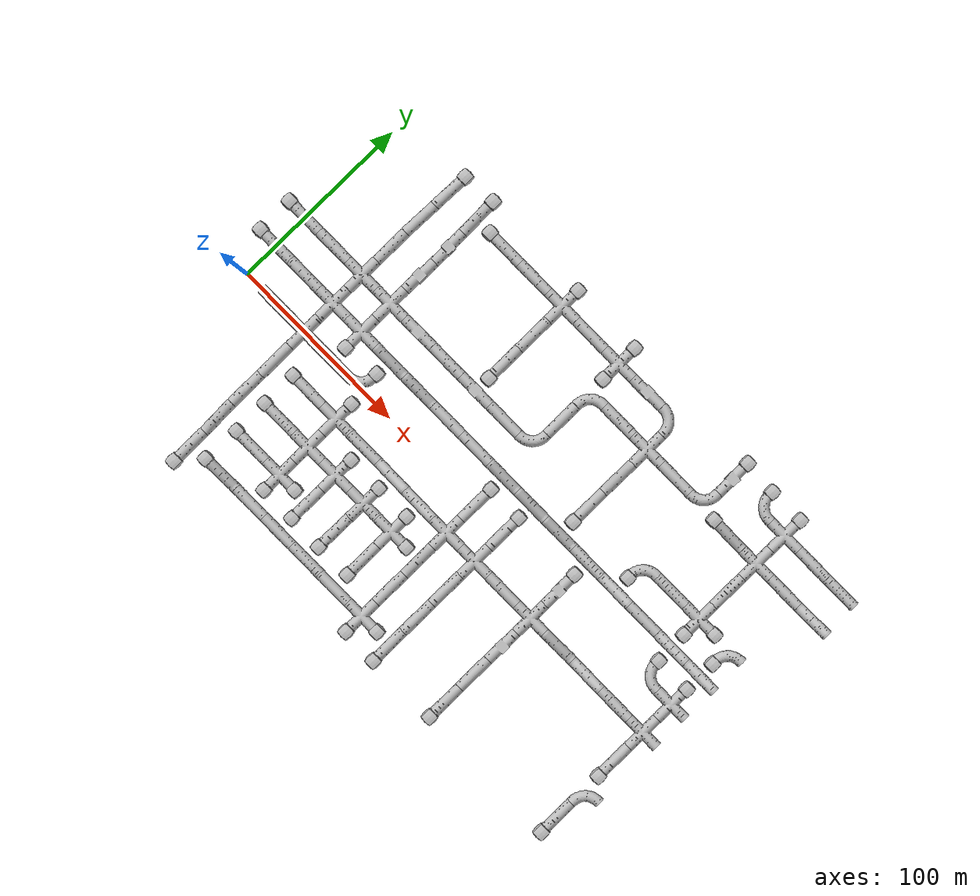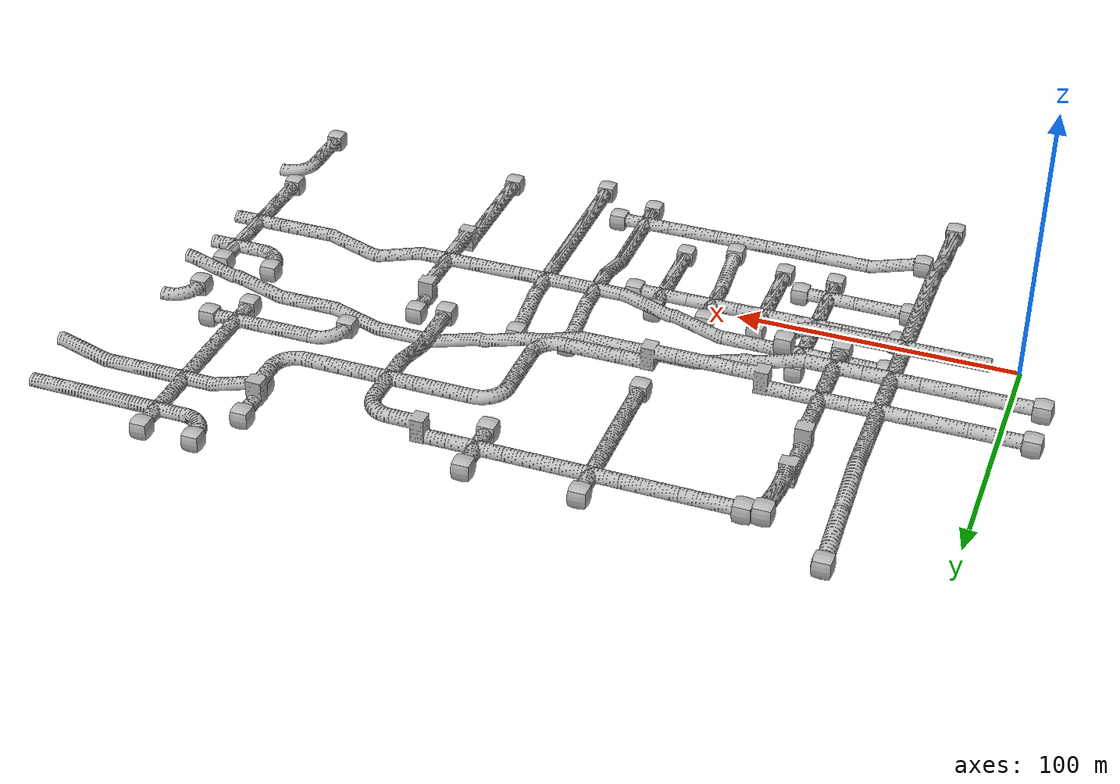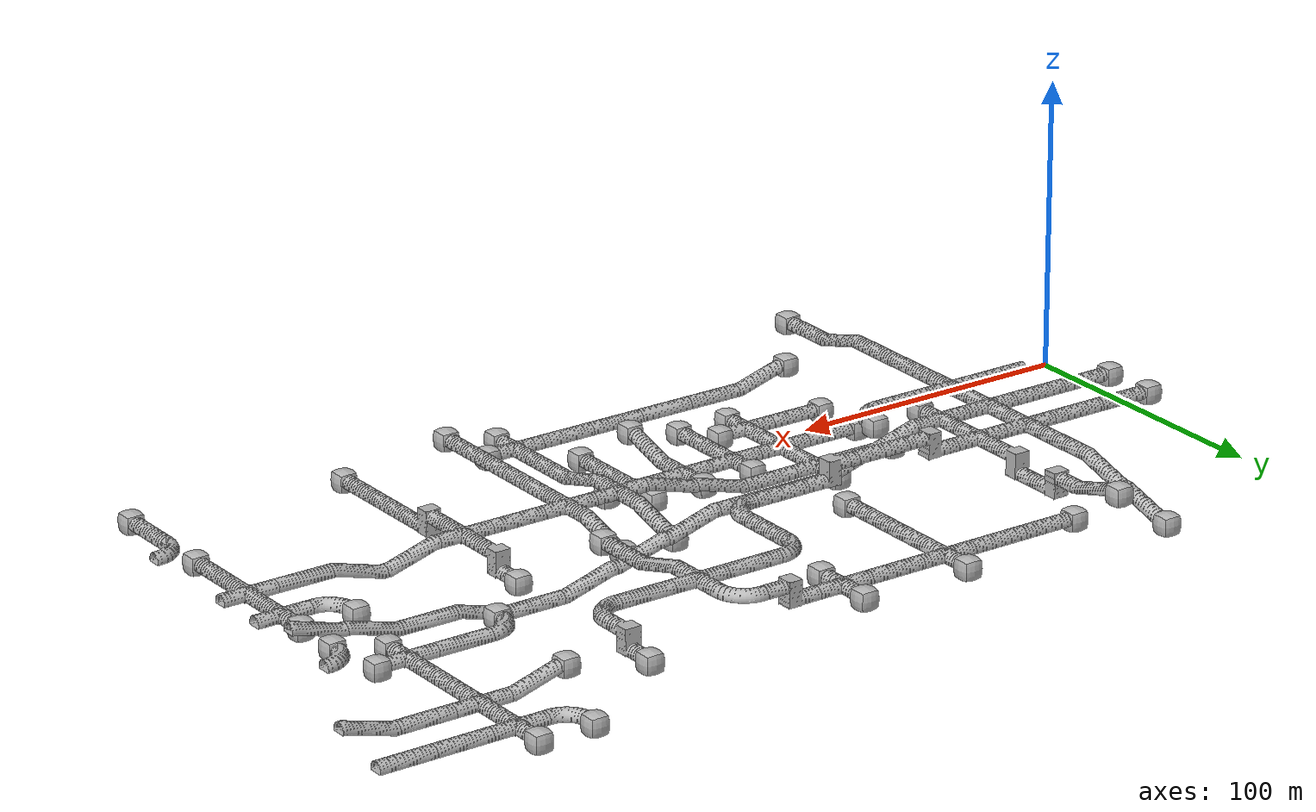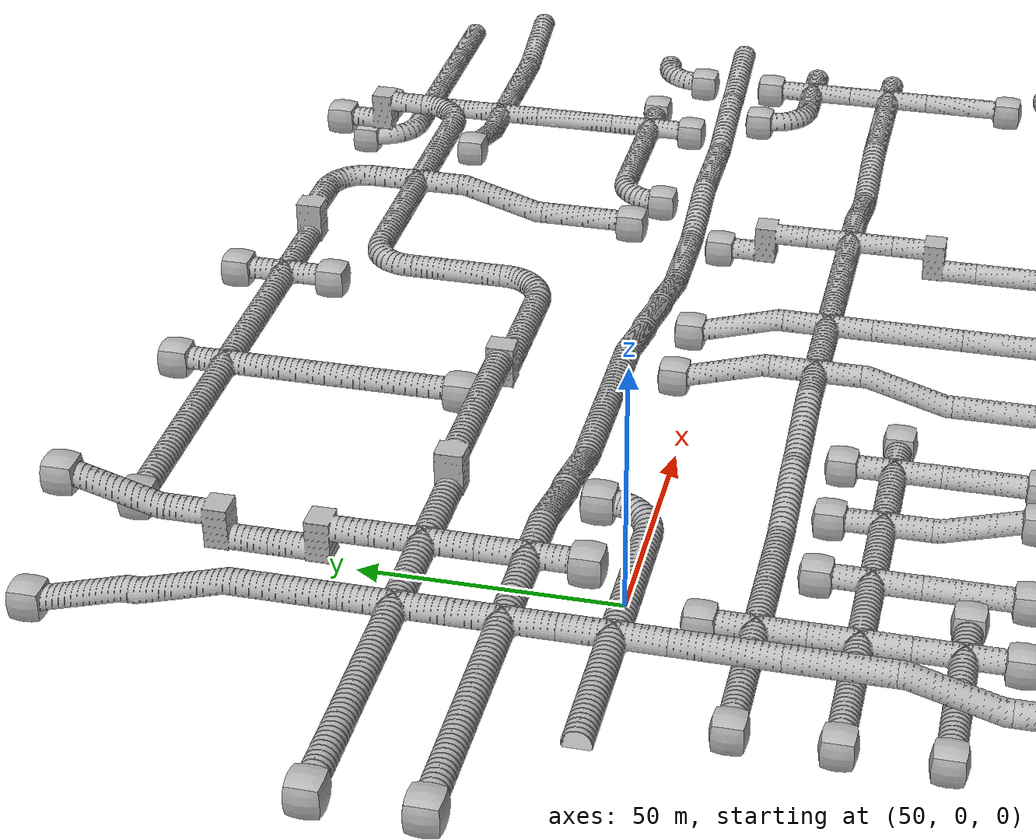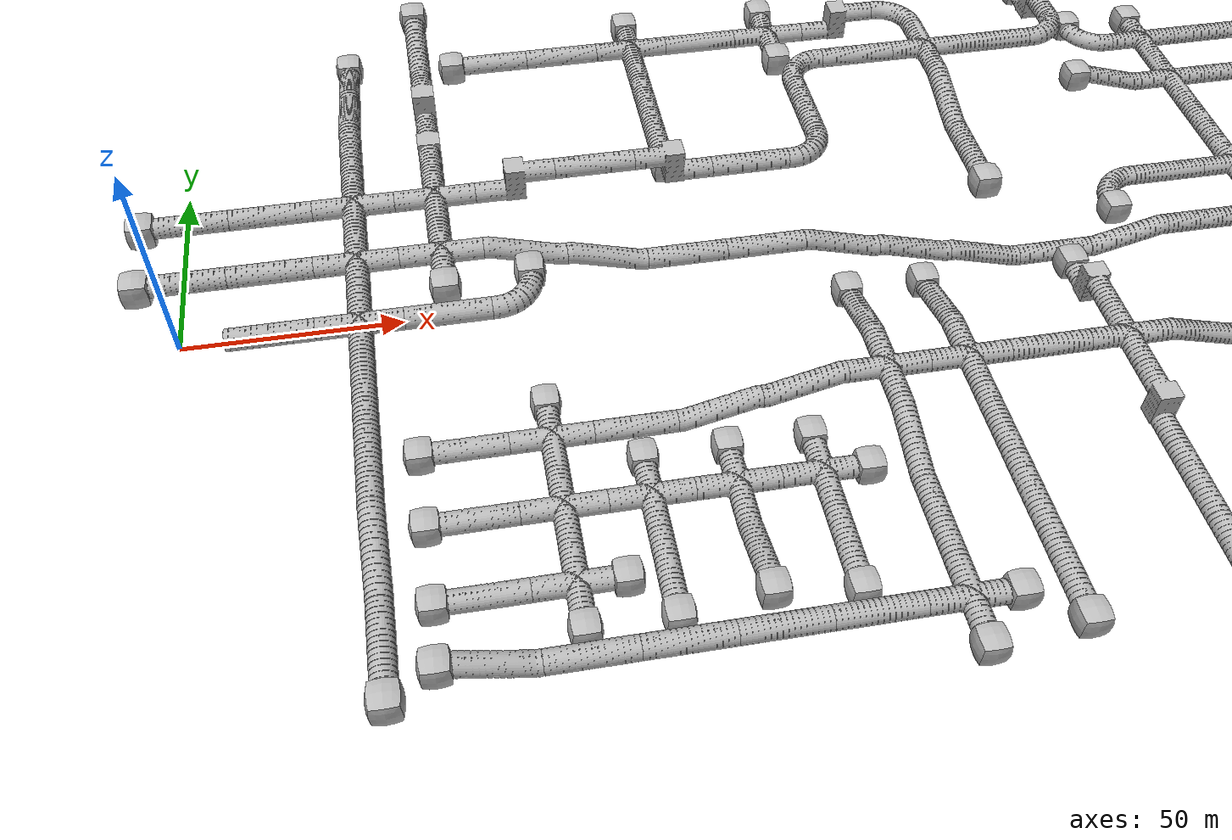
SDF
<sdf version="1.6">
 <world name="tunnel_circuit_05">
  <include><name>artifact_origin</name><pose>2 4 0.5 0 0 0</pose><uri>model://fiducial</uri></include>
  <include>
   <name>tile_1</name>
   <uri>model://tunnel_tile_6</uri>
   <pose>40.000000 100.000000 -10.000000 0 0 3.141593</pose>
  </include>
  <include>
   <name>tile_2</name>
   <uri>model://tunnel_tile_blocker</uri>
   <pose>40.000000 111.000000 -10.000000 0 0 0.000000</pose>
  </include>
  <include>
   <name>tile_3</name>
   <uri>model://tunnel_tile_6</uri>
   <pose>60.000000 100.000000 0.000000 0 0 0.000000</pose>
  </include>
  <include>
   <name>tile_4</name>
   <uri>model://tunnel_tile_blocker</uri>
   <pose>60.000000 111.000000 5.000000 0 0 0.000000</pose>
  </include>
  <include>
   <name>backpack_1</name>
   <uri>model://Backpack</uri>
   <pose>62.000000 107.000000 4.520000 0.314159 0 0.000000</pose>
  </include>
  <include>
   <name>tile_5</name>
   <uri>model://tunnel_tile_5</uri>
   <pose>80.000000 100.000000 -5.000000 0 0 4.712389</pose>
  </include>
  <include>
   <name>tile_6</name>
   <uri>model://tunnel_tile_blocker</uri>
   <pose>69.000000 100.000000 -5.000000 0 0 0.000000</pose>
  </include>
  <include>
   <name>tile_7</name>
   <uri>model://tunnel_tile_5</uri>
   <pose>100.000000 100.000000 -5.000000 0 0 4.712389</pose>
  </include>
  <include>
   <name>backpack_2</name>
   <uri>model://Backpack</uri>
   <pose>89.800000 101.900000 -5.000000 0 0 -1.570796</pose>
  </include>
  <include>
   <name>tile_8</name>
   <uri>model://tunnel_tile_1</uri>
   <pose>120.000000 100.000000 -5.000000 0 0 0.000000</pose>
  </include>
  <include>
   <name>tile_9</name>
   <uri>model://tunnel_tile_blocker</uri>
   <pose>120.000000 111.000000 -5.000000 0 0 0.000000</pose>
  </include>
  <include>
   <name>tile_10</name>
   <uri>model://tunnel_tile_5</uri>
   <pose>140.000000 100.000000 -5.000000 0 0 4.712389</pose>
  </include>
  <include>
   <name>tile_11</name>
   <uri>model://tunnel_tile_1</uri>
   <pose>160.000000 100.000000 -5.000000 0 0 0.000000</pose>
  </include>
  <include>
   <name>tile_12</name>
   <uri>model://tunnel_tile_blocker</uri>
   <pose>160.000000 89.000000 -5.000000 0 0 0.000000</pose>
  </include>
  <include>
   <name>tile_13</name>
   <uri>model://tunnel_tile_blocker</uri>
   <pose>160.000000 111.000000 -5.000000 0 0 0.000000</pose>
  </include>
  <include>
   <name>tile_14</name>
   <uri>model://tunnel_tile_7</uri>
   <pose>180.000000 100.000000 -5.000000 0 0 4.712389</pose>
  </include>
  <include>
   <name>tile_15</name>
   <uri>model://tunnel_tile_2</uri>
   <pose>200.000000 100.000000 0.000000 0 0 4.712389</pose>
  </include>
  <include>
   <name>tile_16</name>
   <uri>model://tunnel_tile_7</uri>
   <pose>240.000000 100.000000 -5.000000 0 0 3.141593</pose>
  </include>
  <include>
   <name>tile_17</name>
   <uri>model://tunnel_tile_blocker</uri>
   <pose>240.000000 111.000000 -5.000000 0 0 0.000000</pose>
  </include>
  <include>
   <name>tile_18</name>
   <uri>model://tunnel_tile_2</uri>
   <pose>260.000000 100.000000 -20.000000 0 0 1.570796</pose>
  </include>
  <include>
   <name>tile_19</name>
   <uri>model://tunnel_tile_blocker</uri>
   <pose>260.000000 111.000000 -20.000000 0 0 0.000000</pose>
  </include>
  <include>
   <name>tile_20</name>
   <uri>model://tunnel_tile_1</uri>
   <pose>280.000000 100.000000 -20.000000 0 0 0.000000</pose>
  </include>
  <include>
   <name>tile_21</name>
   <uri>model://tunnel_tile_blocker</uri>
   <pose>280.000000 111.000000 -20.000000 0 0 0.000000</pose>
  </include>
  <include>
   <name>tile_22</name>
   <uri>model://tunnel_tile_5</uri>
   <pose>300.000000 100.000000 -20.000000 0 0 1.570796</pose>
  </include>
  <include>
   <name>tile_23</name>
   <uri>model://tunnel_tile_5</uri>
   <pose>320.000000 100.000000 -20.000000 0 0 1.570796</pose>
  </include>
  <include>
   <name>tile_35</name>
   <uri>model://tunnel_tile_6</uri>
   <pose>40.000000 80.000000 -5.000000 0 0 3.141593</pose>
  </include>
  <include>
   <name>tile_36</name>
   <uri>model://tunnel_tile_7</uri>
   <pose>60.000000 80.000000 -5.000000 0 0 0.000000</pose>
  </include>
  <include>
   <name>tile_37</name>
   <uri>model://tunnel_tile_5</uri>
   <pose>120.000000 80.000000 -5.000000 0 0 0.000000</pose>
  </include>
  <include>
   <name>tile_38</name>
   <uri>model://tunnel_tile_2</uri>
   <pose>160.000000 80.000000 0.000000 0 0 0.000000</pose>
  </include>
  <include>
   <name>tile_39</name>
   <uri>model://tunnel_tile_5</uri>
   <pose>180.000000 80.000000 0.000000 0 0 1.570796</pose>
  </include>
  <include>
   <name>tile_40</name>
   <uri>model://tunnel_tile_1</uri>
   <pose>200.000000 80.000000 0.000000 0 0 0.000000</pose>
  </include>
  <include>
   <name>tile_41</name>
   <uri>model://tunnel_tile_5</uri>
   <pose>220.000000 80.000000 0.000000 0 0 1.570796</pose>
  </include>
  <include>
   <name>tile_42</name>
   <uri>model://tunnel_tile_2</uri>
   <pose>240.000000 80.000000 0.000000 0 0 3.141593</pose>
  </include>
  <include>
   <name>tile_43</name>
   <uri>model://tunnel_tile_6</uri>
   <pose>260.000000 80.000000 -20.000000 0 0 1.570796</pose>
  </include>
  <include>
   <name>tile_44</name>
   <uri>model://tunnel_tile_blocker</uri>
   <pose>249.000000 80.000000 -15.000000 0 0 0.000000</pose>
  </include>
  <include>
   <name>tile_45</name>
   <uri>model://tunnel_tile_1</uri>
   <pose>280.000000 80.000000 -20.000000 0 0 0.000000</pose>
  </include>
  <include>
   <name>tile_46</name>
   <uri>model://tunnel_tile_5</uri>
   <pose>300.000000 80.000000 -20.000000 0 0 4.712389</pose>
  </include>
  <include>
   <name>tile_47</name>
   <uri>model://tunnel_tile_6</uri>
   <pose>320.000000 80.000000 -20.000000 0 0 4.712389</pose>
  </include>
  <include>
   <name>tile_67</name>
   <uri>model://tunnel_tile_5</uri>
   <pose>40.000000 60.000000 0.000000 0 0 3.141593</pose>
  </include>
  <include>
   <name>tile_68</name>
   <uri>model://tunnel_tile_7</uri>
   <pose>60.000000 60.000000 -5.000000 0 0 3.141593</pose>
  </include>
  <include>
   <name>tile_69</name>
   <uri>model://tunnel_tile_5</uri>
   <pose>120.000000 60.000000 -5.000000 0 0 0.000000</pose>
  </include>
  <include>
   <name>tile_70</name>
   <uri>model://tunnel_tile_blocker</uri>
   <pose>120.000000 49.000000 -5.000000 0 0 0.000000</pose>
  </include>
  <include>
   <name>tile_71</name>
   <uri>model://tunnel_tile_5</uri>
   <pose>160.000000 60.000000 0.000000 0 0 3.141593</pose>
  </include>
  <include>
   <name>tile_72</name>
   <uri>model://tunnel_tile_6</uri>
   <pose>200.000000 60.000000 -5.000000 0 0 0.000000</pose>
  </include>
  <include>
   <name>tile_73</name>
   <uri>model://tunnel_tile_5</uri>
   <pose>280.000000 60.000000 -20.000000 0 0 0.000000</pose>
  </include>
  <include>
   <name>tile_94</name>
   <uri>model://tunnel_tile_5</uri>
   <pose>0.000000 40.000000 0.000000 0 0 4.712389</pose>
  </include>
  <include>
   <name>tile_95</name>
   <uri>model://tunnel_tile_blocker</uri>
   <pose>-11.000000 40.000000 0.000000 0 0 0.000000</pose>
  </include>
  <include>
   <name>tile_96</name>
   <uri>model://tunnel_tile_5</uri>
   <pose>20.000000 40.000000 0.000000 0 0 4.712389</pose>
  </include>
  <include>
   <name>tile_97</name>
   <uri>model://tunnel_tile_1</uri>
   <pose>40.000000 40.000000 0.000000 0 0 0.000000</pose>
  </include>
  <include>
   <name>tile_98</name>
   <uri>model://tunnel_tile_1</uri>
   <pose>60.000000 40.000000 0.000000 0 0 0.000000</pose>
  </include>
  <include>
   <name>tile_99</name>
   <uri>model://tunnel_tile_7</uri>
   <pose>80.000000 40.000000 0.000000 0 0 4.712389</pose>
  </include>
  <include>
   <name>tile_100</name>
   <uri>model://tunnel_tile_5</uri>
   <pose>100.000000 40.000000 5.000000 0 0 1.570796</pose>
  </include>
  <include>
   <name>tile_101</name>
   <uri>model://tunnel_tile_7</uri>
   <pose>120.000000 40.000000 0.000000 0 0 1.570796</pose>
  </include>
  <include>
   <name>tile_102</name>
   <uri>model://tunnel_tile_5</uri>
   <pose>140.000000 40.000000 0.000000 0 0 1.570796</pose>
  </include>
  <include>
   <name>tile_103</name>
   <uri>model://tunnel_tile_2</uri>
   <pose>160.000000 40.000000 0.000000 0 0 3.141593</pose>
  </include>
  <include>
   <name>tile_104</name>
   <uri>model://tunnel_tile_5</uri>
   <pose>200.000000 40.000000 -5.000000 0 0 0.000000</pose>
  </include>
  <include>
   <name>tile_105</name>
   <uri>model://tunnel_tile_blocker</uri>
   <pose>200.000000 29.000000 -5.000000 0 0 0.000000</pose>
  </include>
  <include>
   <name>tile_106</name>
   <uri>model://tunnel_tile_2</uri>
   <pose>240.000000 40.000000 -20.000000 0 0 0.000000</pose>
  </include>
  <include>
   <name>tile_107</name>
   <uri>model://tunnel_tile_blocker</uri>
   <pose>240.000000 29.000000 -20.000000 0 0 0.000000</pose>
  </include>
  <include>
   <name>tile_108</name>
   <uri>model://tunnel_tile_5</uri>
   <pose>260.000000 40.000000 -20.000000 0 0 4.712389</pose>
  </include>
  <include>
   <name>tile_109</name>
   <uri>model://tunnel_tile_1</uri>
   <pose>280.000000 40.000000 -20.000000 0 0 0.000000</pose>
  </include>
  <include>
   <name>tile_110</name>
   <uri>model://tunnel_tile_blocker</uri>
   <pose>291.000000 40.000000 -20.000000 0 0 0.000000</pose>
  </include>
  <include>
   <name>tile_111</name>
   <uri>model://tunnel_tile_blocker</uri>
   <pose>280.000000 29.000000 -20.000000 0 0 0.000000</pose>
  </include>
  <include>
   <name>tile_112</name>
   <uri>model://tunnel_tile_2</uri>
   <pose>300.000000 40.000000 -15.000000 0 0 0.000000</pose>
  </include>
  <include>
   <name>tile_113</name>
   <uri>model://tunnel_tile_blocker</uri>
   <pose>300.000000 29.000000 -15.000000 0 0 0.000000</pose>
  </include>
  <include>
   <name>extinguisher_2</name>
   <uri>model://Extinguisher</uri>
   <pose>302.000000 34.500000 -15.000000 0 0 0.000000</pose>
  </include>
  <include>
   <name>tile_136</name>
   <uri>model://tunnel_tile_5</uri>
   <pose>0.000000 20.000000 0.000000 0 0 4.712389</pose>
  </include>
  <include>
   <name>tile_137</name>
   <uri>model://tunnel_tile_blocker</uri>
   <pose>-11.000000 20.000000 0.000000 0 0 0.000000</pose>
  </include>
  <include>
   <name>tile_138</name>
   <uri>model://tunnel_tile_5</uri>
   <pose>20.000000 20.000000 0.000000 0 0 4.712389</pose>
  </include>
  <include>
   <name>tile_139</name>
   <uri>model://tunnel_tile_1</uri>
   <pose>40.000000 20.000000 0.000000 0 0 0.000000</pose>
  </include>
  <include>
   <name>tile_140</name>
   <uri>model://tunnel_tile_1</uri>
   <pose>60.000000 20.000000 0.000000 0 0 0.000000</pose>
  </include>
  <include>
   <name>tile_141</name>
   <uri>model://tunnel_tile_blocker</uri>
   <pose>60.000000 9.000000 0.000000 0 0 0.000000</pose>
  </include>
  <include>
   <name>tile_142</name>
   <uri>model://tunnel_tile_6</uri>
   <pose>80.000000 20.000000 -5.000000 0 0 1.570796</pose>
  </include>
  <include>
   <name>tile_143</name>
   <uri>model://tunnel_tile_6</uri>
   <pose>100.000000 20.000000 -10.000000 0 0 1.570796</pose>
  </include>
  <include>
   <name>tile_144</name>
   <uri>model://tunnel_tile_5</uri>
   <pose>120.000000 20.000000 -10.000000 0 0 1.570796</pose>
  </include>
  <include>
   <name>tile_145</name>
   <uri>model://tunnel_tile_5</uri>
   <pose>140.000000 20.000000 -10.000000 0 0 1.570796</pose>
  </include>
  <include>
   <name>tile_146</name>
   <uri>model://tunnel_tile_6</uri>
   <pose>160.000000 20.000000 -15.000000 0 0 1.570796</pose>
  </include>
  <include>
   <name>tile_147</name>
   <uri>model://tunnel_tile_6</uri>
   <pose>180.000000 20.000000 -20.000000 0 0 1.570796</pose>
  </include>
  <include>
   <name>tile_148</name>
   <uri>model://tunnel_tile_6</uri>
   <pose>200.000000 20.000000 -25.000000 0 0 1.570796</pose>
  </include>
  <include>
   <name>tile_149</name>
   <uri>model://tunnel_tile_5</uri>
   <pose>220.000000 20.000000 -25.000000 0 0 1.570796</pose>
  </include>
  <include>
   <name>tile_150</name>
   <uri>model://tunnel_tile_6</uri>
   <pose>240.000000 20.000000 -25.000000 0 0 4.712389</pose>
  </include>
  <include>
   <name>tile_151</name>
   <uri>model://tunnel_tile_5</uri>
   <pose>260.000000 20.000000 -20.000000 0 0 1.570796</pose>
  </include>
  <include>
   <name>tile_152</name>
   <uri>model://tunnel_tile_6</uri>
   <pose>280.000000 20.000000 -20.000000 0 0 4.712389</pose>
  </include>
  <include>
   <name>tile_153</name>
   <uri>model://tunnel_tile_6</uri>
   <pose>300.000000 20.000000 -15.000000 0 0 4.712389</pose>
  </include>
  <include>
   <name>tile_173</name>
   <uri>model://tunnel_tile_5</uri>
   <pose>20.000000 0.000000 0.000000 0 0 1.570796</pose>
  </include>
  <include>
   <name>tile_174</name>
   <uri>model://tunnel_tile_1</uri>
   <pose>40.000000 0.000000 0.000000 0 0 0.000000</pose>
  </include>
  <include>
   <name>tile_175</name>
   <uri>model://tunnel_tile_5</uri>
   <pose>60.000000 0.000000 0.000000 0 0 1.570796</pose>
  </include>
  <include>
   <name>tile_176</name>
   <uri>model://tunnel_tile_2</uri>
   <pose>80.000000 0.000000 0.000000 0 0 3.141593</pose>
  </include>
  <include>
   <name>tile_177</name>
   <uri>model://tunnel_tile_blocker</uri>
   <pose>80.000000 11.000000 0.000000 0 0 0.000000</pose>
  </include>
  <include>
   <name>tile_178</name>
   <uri>model://tunnel_tile_6</uri>
   <pose>160.000000 0.000000 -20.000000 0 0 3.141593</pose>
  </include>
  <include>
   <name>tile_179</name>
   <uri>model://tunnel_tile_blocker</uri>
   <pose>160.000000 11.000000 -20.000000 0 0 0.000000</pose>
  </include>
  <include>
   <name>tile_180</name>
   <uri>model://tunnel_tile_6</uri>
   <pose>180.000000 0.000000 -20.000000 0 0 3.141593</pose>
  </include>
  <include>
   <name>tile_181</name>
   <uri>model://tunnel_tile_blocker</uri>
   <pose>180.000000 11.000000 -20.000000 0 0 0.000000</pose>
  </include>
  <include>
   <name>tile_182</name>
   <uri>model://tunnel_tile_7</uri>
   <pose>220.000000 0.000000 -20.000000 0 0 3.141593</pose>
  </include>
  <include>
   <name>tile_183</name>
   <uri>model://tunnel_tile_blocker</uri>
   <pose>220.000000 11.000000 -20.000000 0 0 0.000000</pose>
  </include>
  <include>
   <name>tile_184</name>
   <uri>model://tunnel_tile_2</uri>
   <pose>280.000000 0.000000 -15.000000 0 0 1.570796</pose>
  </include>
  <include>
   <name>tile_185</name>
   <uri>model://tunnel_tile_blocker</uri>
   <pose>280.000000 11.000000 -15.000000 0 0 0.000000</pose>
  </include>
  <include>
   <name>tile_186</name>
   <uri>model://tunnel_tile_1</uri>
   <pose>300.000000 0.000000 -15.000000 0 0 0.000000</pose>
  </include>
  <include>
   <name>tile_187</name>
   <uri>model://tunnel_tile_blocker</uri>
   <pose>300.000000 11.000000 -15.000000 0 0 0.000000</pose>
  </include>
  <include>
   <name>tile_203</name>
   <uri>model://tunnel_tile_5</uri>
   <pose>40.000000 -20.000000 0.000000 0 0 0.000000</pose>
  </include>
  <include>
   <name>tile_204</name>
   <uri>model://tunnel_tile_5</uri>
   <pose>60.000000 -20.000000 -25.000000 0 0 4.712389</pose>
  </include>
  <include>
   <name>tile_205</name>
   <uri>model://tunnel_tile_blocker</uri>
   <pose>49.000000 -20.000000 -25.000000 0 0 0.000000</pose>
  </include>
  <include>
   <name>tile_206</name>
   <uri>model://tunnel_tile_1</uri>
   <pose>80.000000 -20.000000 -25.000000 0 0 0.000000</pose>
  </include>
  <include>
   <name>tile_207</name>
   <uri>model://tunnel_tile_blocker</uri>
   <pose>80.000000 -9.000000 -25.000000 0 0 0.000000</pose>
  </include>
  <include>
   <name>tile_208</name>
   <uri>model://tunnel_tile_5</uri>
   <pose>100.000000 -20.000000 -25.000000 0 0 4.712389</pose>
  </include>
  <include>
   <name>tile_209</name>
   <uri>model://tunnel_tile_6</uri>
   <pose>120.000000 -20.000000 -25.000000 0 0 4.712389</pose>
  </include>
  <include>
   <name>tile_210</name>
   <uri>model://tunnel_tile_6</uri>
   <pose>140.000000 -20.000000 -20.000000 0 0 4.712389</pose>
  </include>
  <include>
   <name>tile_211</name>
   <uri>model://tunnel_tile_1</uri>
   <pose>160.000000 -20.000000 -15.000000 0 0 0.000000</pose>
  </include>
  <include>
   <name>tile_212</name>
   <uri>model://tunnel_tile_1</uri>
   <pose>180.000000 -20.000000 -15.000000 0 0 0.000000</pose>
  </include>
  <include>
   <name>tile_213</name>
   <uri>model://tunnel_tile_5</uri>
   <pose>200.000000 -20.000000 -15.000000 0 0 4.712389</pose>
  </include>
  <include>
   <name>tile_214</name>
   <uri>model://tunnel_tile_1</uri>
   <pose>220.000000 -20.000000 -15.000000 0 0 0.000000</pose>
  </include>
  <include>
   <name>tile_215</name>
   <uri>model://tunnel_tile_6</uri>
   <pose>240.000000 -20.000000 -20.000000 0 0 1.570796</pose>
  </include>
  <include>
   <name>tile_216</name>
   <uri>model://tunnel_tile_6</uri>
   <pose>260.000000 -20.000000 -20.000000 0 0 4.712389</pose>
  </include>
  <include>
   <name>tile_217</name>
   <uri>model://tunnel_tile_5</uri>
   <pose>280.000000 -20.000000 -15.000000 0 0 4.712389</pose>
  </include>
  <include>
   <name>tile_218</name>
   <uri>model://tunnel_tile_1</uri>
   <pose>300.000000 -20.000000 -15.000000 0 0 0.000000</pose>
  </include>
  <include>
   <name>tile_238</name>
   <uri>model://tunnel_tile_5</uri>
   <pose>40.000000 -40.000000 0.000000 0 0 0.000000</pose>
  </include>
  <include>
   <name>tile_239</name>
   <uri>model://tunnel_tile_5</uri>
   <pose>60.000000 -40.000000 -25.000000 0 0 4.712389</pose>
  </include>
  <include>
   <name>tile_240</name>
   <uri>model://tunnel_tile_blocker</uri>
   <pose>49.000000 -40.000000 -25.000000 0 0 0.000000</pose>
  </include>
  <include>
   <name>tile_241</name>
   <uri>model://tunnel_tile_blocker</uri>
   <pose>49.000000 -40.000000 -25.000000 0 0 0.000000</pose>
  </include>
  <include>
   <name>tile_242</name>
   <uri>model://tunnel_tile_1</uri>
   <pose>80.000000 -40.000000 -25.000000 0 0 0.000000</pose>
  </include>
  <include>
   <name>tile_243</name>
   <uri>model://tunnel_tile_1</uri>
   <pose>100.000000 -40.000000 -25.000000 0 0 0.000000</pose>
  </include>
  <include>
   <name>tile_244</name>
   <uri>model://tunnel_tile_blocker</uri>
   <pose>100.000000 -29.000000 -25.000000 0 0 0.000000</pose>
  </include>
  <include>
   <name>tile_245</name>
   <uri>model://tunnel_tile_1</uri>
   <pose>120.000000 -40.000000 -25.000000 0 0 0.000000</pose>
  </include>
  <include>
   <name>tile_246</name>
   <uri>model://tunnel_tile_blocker</uri>
   <pose>120.000000 -29.000000 -25.000000 0 0 0.000000</pose>
  </include>
  <include>
   <name>tile_247</name>
   <uri>model://tunnel_tile_1</uri>
   <pose>140.000000 -40.000000 -25.000000 0 0 0.000000</pose>
  </include>
  <include>
   <name>tile_248</name>
   <uri>model://tunnel_tile_blocker</uri>
   <pose>140.000000 -29.000000 -25.000000 0 0 0.000000</pose>
  </include>
  <include>
   <name>tile_249</name>
   <uri>model://tunnel_tile_blocker</uri>
   <pose>151.000000 -40.000000 -25.000000 0 0 0.000000</pose>
  </include>
  <include>
   <name>tile_250</name>
   <uri>model://tunnel_tile_6</uri>
   <pose>160.000000 -40.000000 -20.000000 0 0 0.000000</pose>
  </include>
  <include>
   <name>tile_251</name>
   <uri>model://tunnel_tile_5</uri>
   <pose>180.000000 -40.000000 -15.000000 0 0 0.000000</pose>
  </include>
  <include>
   <name>tile_252</name>
   <uri>model://tunnel_tile_7</uri>
   <pose>220.000000 -40.000000 -20.000000 0 0 0.000000</pose>
  </include>
  <include>
   <name>tile_253</name>
   <uri>model://tunnel_tile_5</uri>
   <pose>300.000000 -40.000000 -15.000000 0 0 0.000000</pose>
  </include>
  <include>
   <name>tile_254</name>
   <uri>model://tunnel_tile_blocker</uri>
   <pose>300.000000 -51.000000 -15.000000 0 0 0.000000</pose>
  </include>
  <include>
   <name>tile_267</name>
   <uri>model://tunnel_tile_6</uri>
   <pose>40.000000 -60.000000 -5.000000 0 0 0.000000</pose>
  </include>
  <include>
   <name>tile_268</name>
   <uri>model://tunnel_tile_5</uri>
   <pose>60.000000 -60.000000 -25.000000 0 0 4.712389</pose>
  </include>
  <include>
   <name>tile_269</name>
   <uri>model://tunnel_tile_blocker</uri>
   <pose>49.000000 -60.000000 -25.000000 0 0 0.000000</pose>
  </include>
  <include>
   <name>tile_270</name>
   <uri>model://tunnel_tile_1</uri>
   <pose>80.000000 -60.000000 -25.000000 0 0 0.000000</pose>
  </include>
  <include>
   <name>tile_271</name>
   <uri>model://tunnel_tile_blocker</uri>
   <pose>91.000000 -60.000000 -25.000000 0 0 0.000000</pose>
  </include>
  <include>
   <name>tile_272</name>
   <uri>model://tunnel_tile_blocker</uri>
   <pose>80.000000 -71.000000 -25.000000 0 0 0.000000</pose>
  </include>
  <include>
   <name>tile_273</name>
   <uri>model://tunnel_tile_5</uri>
   <pose>100.000000 -60.000000 -25.000000 0 0 0.000000</pose>
  </include>
  <include>
   <name>tile_274</name>
   <uri>model://tunnel_tile_blocker</uri>
   <pose>100.000000 -71.000000 -25.000000 0 0 0.000000</pose>
  </include>
  <include>
   <name>tile_275</name>
   <uri>model://tunnel_tile_6</uri>
   <pose>120.000000 -60.000000 -25.000000 0 0 3.141593</pose>
  </include>
  <include>
   <name>tile_276</name>
   <uri>model://tunnel_tile_blocker</uri>
   <pose>120.000000 -71.000000 -20.000000 0 0 0.000000</pose>
  </include>
  <include>
   <name>backpack_4</name>
   <uri>model://Backpack</uri>
   <pose>121.200000 -67.000000 -20.480000 0.314159 0 3.141593</pose>
  </include>
  <include>
   <name>tile_277</name>
   <uri>model://tunnel_tile_5</uri>
   <pose>140.000000 -60.000000 -25.000000 0 0 0.000000</pose>
  </include>
  <include>
   <name>tile_278</name>
   <uri>model://tunnel_tile_blocker</uri>
   <pose>140.000000 -71.000000 -25.000000 0 0 0.000000</pose>
  </include>
  <include>
   <name>tile_279</name>
   <uri>model://tunnel_tile_5</uri>
   <pose>160.000000 -60.000000 -20.000000 0 0 0.000000</pose>
  </include>
  <include>
   <name>tile_280</name>
   <uri>model://tunnel_tile_5</uri>
   <pose>180.000000 -60.000000 -15.000000 0 0 0.000000</pose>
  </include>
  <include>
   <name>tile_281</name>
   <uri>model://tunnel_tile_5</uri>
   <pose>220.000000 -60.000000 -20.000000 0 0 0.000000</pose>
  </include>
  <include>
   <name>tile_282</name>
   <uri>model://tunnel_tile_2</uri>
   <pose>300.000000 -60.000000 -15.000000 0 0 0.000000</pose>
  </include>
  <include>
   <name>phone_2</name>
   <uri>model://Phone</uri>
   <pose>297.700000 -67.000000 -14.992000 1.570796 3.141593 0.000000</pose>
  </include>
  <include>
   <name>tile_292</name>
   <uri>model://tunnel_tile_5</uri>
   <pose>40.000000 -80.000000 -5.000000 0 0 0.000000</pose>
  </include>
  <include>
   <name>tile_293</name>
   <uri>model://tunnel_tile_blocker</uri>
   <pose>40.000000 -91.000000 -5.000000 0 0 0.000000</pose>
  </include>
  <include>
   <name>tile_294</name>
   <uri>model://tunnel_tile_6</uri>
   <pose>60.000000 -80.000000 -20.000000 0 0 1.570796</pose>
  </include>
  <include>
   <name>tile_295</name>
   <uri>model://tunnel_tile_blocker</uri>
   <pose>49.000000 -80.000000 -15.000000 0 0 0.000000</pose>
  </include>
  <include>
   <name>tile_296</name>
   <uri>model://tunnel_tile_5</uri>
   <pose>80.000000 -80.000000 -20.000000 0 0 4.712389</pose>
  </include>
  <include>
   <name>tile_297</name>
   <uri>model://tunnel_tile_5</uri>
   <pose>100.000000 -80.000000 -20.000000 0 0 4.712389</pose>
  </include>
  <include>
   <name>tile_298</name>
   <uri>model://tunnel_tile_5</uri>
   <pose>120.000000 -80.000000 -20.000000 0 0 4.712389</pose>
  </include>
  <include>
   <name>tile_299</name>
   <uri>model://tunnel_tile_5</uri>
   <pose>140.000000 -80.000000 -20.000000 0 0 4.712389</pose>
  </include>
  <include>
   <name>tile_300</name>
   <uri>model://tunnel_tile_1</uri>
   <pose>160.000000 -80.000000 -20.000000 0 0 0.000000</pose>
  </include>
  <include>
   <name>tile_301</name>
   <uri>model://tunnel_tile_blocker</uri>
   <pose>171.000000 -80.000000 -20.000000 0 0 0.000000</pose>
  </include>
  <include>
   <name>tile_302</name>
   <uri>model://tunnel_tile_blocker</uri>
   <pose>160.000000 -91.000000 -20.000000 0 0 0.000000</pose>
  </include>
  <include>
   <name>tile_303</name>
   <uri>model://tunnel_tile_5</uri>
   <pose>180.000000 -80.000000 -15.000000 0 0 0.000000</pose>
  </include>
  <include>
   <name>tile_304</name>
   <uri>model://tunnel_tile_blocker</uri>
   <pose>180.000000 -91.000000 -15.000000 0 0 0.000000</pose>
  </include>
  <include>
   <name>tile_305</name>
   <uri>model://tunnel_tile_5</uri>
   <pose>220.000000 -80.000000 -20.000000 0 0 0.000000</pose>
  </include>
  <include>
   <name>tile_306</name>
   <uri>model://tunnel_tile_blocker</uri>
   <pose>220.000000 -91.000000 -20.000000 0 0 0.000000</pose>
  </include>
  <include>
   <name>phone_3</name>
   <uri>model://Phone</uri>
   <pose>218.800000 -87.200000 -19.992000 1.570796 3.141593 0.000000</pose>
  </include>
  <include>
   <name>tile_307</name>
   <uri>model://tunnel_tile_5</uri>
   <pose>300.000000 -80.000000 -15.000000 0 0 0.000000</pose>
  </include>
  <include>
   <name>tile_308</name>
   <uri>model://tunnel_tile_blocker</uri>
   <pose>300.000000 -91.000000 -15.000000 0 0 0.000000</pose>
  </include>
 </world>
</sdf>
